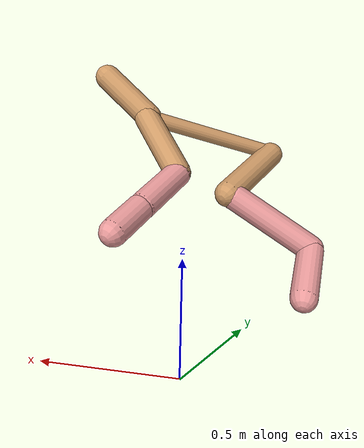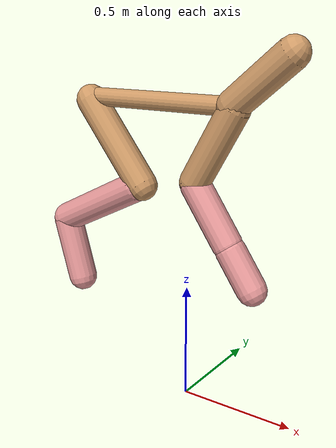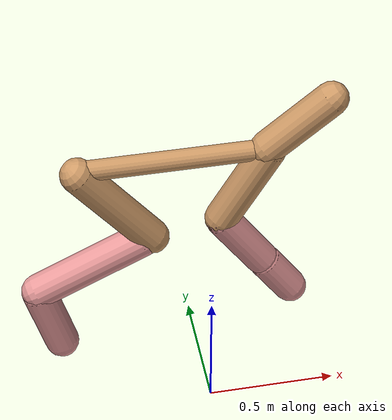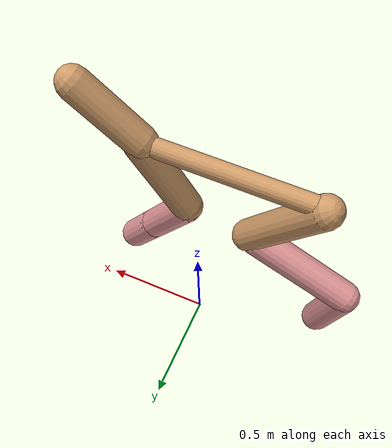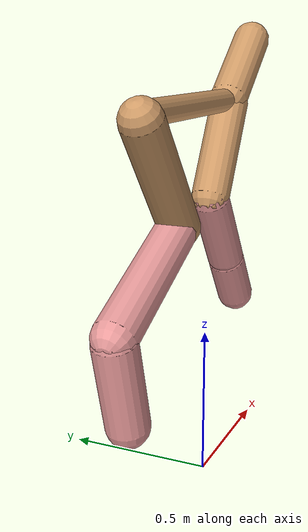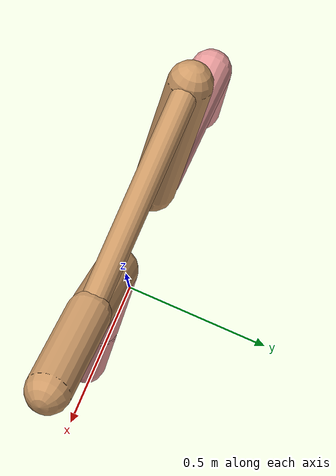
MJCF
<mujoco model="cheetah">
  <compiler angle="radian" coordinate="local" inertiafromgeom="true" settotalmass="14" />
  <default>
    <joint armature=".1" damping=".01" limited="true" solimplimit="0 .8 .03" solreflimit=".02 1" stiffness="8" />
    <geom conaffinity="0" condim="3" contype="1" friction="0.8 .1 .1" rgba="0.8 0.6 .4 1" solimp="0.0 0.8 0.01" solref="0.02 1" />
    <motor ctrllimited="true" ctrlrange="-1 1" />
  </default>
  <size nstack="300000" nuser_geom="1" />
  <option gravity="0 0 -9.81" timestep="0.01" />
  <worldbody>
    <body name="torso" pos="0.0 0.0 1.2666169412329293">
      <joint armature="0" axis="1 0 0" damping="0" limited="false" name="ignorex" pos="0 0 0" stiffness="0" type="slide" />
      <joint armature="0" axis="0 0 1" damping="0" limited="false" name="ignorez" pos="0 0 0" stiffness="0" type="slide" />
      <joint armature="0" axis="0 1 0" damping="0" limited="false" name="ignorey" pos="0 0 0" stiffness="0" type="hinge" />
      <geom fromto="-0.5 0.0 0.0 0.2101637619735211 0.0 0.0" name="torso" size="0.038049449581237134" type="capsule" />
      <geom axisangle="0 1 0 .87" name="head" pos="0.310163761973521 0.0 0.1" size="0.06277672252199305 0.15" type="capsule" />

      <body name="bthigh" pos="-.5 0 0">
        <joint axis="0 1 0" damping="6" name="bthigh" pos="0 0 0" range="-.52 1.05" stiffness="240" type="hinge" />
        <geom axisangle="0 1 0 -3.8" name="bthigh" pos="0.14245212264463641 0.0 -0.18518775943802734" size="0.06463855288682599 0.21462665803286" type="capsule" />
        <body name="bshin" pos="0.24490424528927282 0.0 -0.3603755188760547">
          <joint axis="0 1 0" damping="4.5" name="bshin" pos="0 0 0" range="-.785 .785" stiffness="180" type="hinge" />
          <geom axisangle="0 1 0 -2.03" name="bshin" pos="-0.2044234236169407 0.0 -0.10221171180847036" rgba="0.9 0.6 0.6 1" size="0.06463855288682599 0.2220275772753724" type="capsule" />
          <body name="bfoot" pos="-0.4088468472338814 0.0 -0.2044234236169407">
            <joint axis="0 1 0" damping="3" name="bfoot" pos="0 0 0" range="-.4 .785" stiffness="120" type="hinge" />
            <geom axisangle="0 1 0 -.27" name="bfoot" pos="0.04333670013485598 0.0 -0.140121997102701" rgba="0.9 0.6 0.6 1" size="0.06463855288682599 0.13913728175923337" type="capsule" />
            <inertial mass="10" />
          </body>
        </body>
      </body>
      <body name="fthigh" pos="0.21016376197352105 0.0 0.0">
        <joint axis="0 1 0" damping="4.5" name="fthigh" pos="0 0 0" range="-1.5 0.8" stiffness="180" type="hinge" />
        <geom axisangle="0 1 0 .52" name="fthigh" pos="-0.09070958852690572 0.0 -0.15550215176040977" size="0.06255437574144694 0.17410097123637" type="capsule" />
        <body name="fshin" pos="-0.18141917705381144 0.0 -0.31100430352081954">
          <joint axis="0 1 0" damping="3" name="fshin" pos="0 0 0" range="-1.2 1.1" stiffness="120" type="hinge" />
          <geom axisangle="0 1 0 -.6" name="fshin" pos="0.08417901070487722 0.0 -0.11655555328367614" rgba="0.9 0.6 0.6 1" size="0.06255437574144694 0.13875716504552796" type="capsule" />
          <body name="ffoot" pos="0.16835802140975445 0.0 -0.2331111065673523">
            <joint axis="0 1 0" damping="1.5" name="ffoot" pos="0 0 0" range="-3.1 -0.3" stiffness="60" type="hinge" />
            <geom axisangle="0 1 0 -.6" name="ffoot" pos="0.056697716950749905 0.0 -0.08819644859005542" rgba="0.9 0.6 0.6 1" size="0.06255437574144694 0.09163209012440526" type="capsule" />
            <inertial mass="10" />
          </body>
        </body>
      </body>
    </body>
  </worldbody>
  <actuator>
    <motor gear="120" joint="bthigh" name="bthigh" />
    <motor gear="90" joint="bshin" name="bshin" />
    <motor gear="60" joint="bfoot" name="bfoot" />
    <motor gear="120" joint="fthigh" name="fthigh" />
    <motor gear="60" joint="fshin" name="fshin" />
    <motor gear="30" joint="ffoot" name="ffoot" />
  </actuator>
</mujoco>
